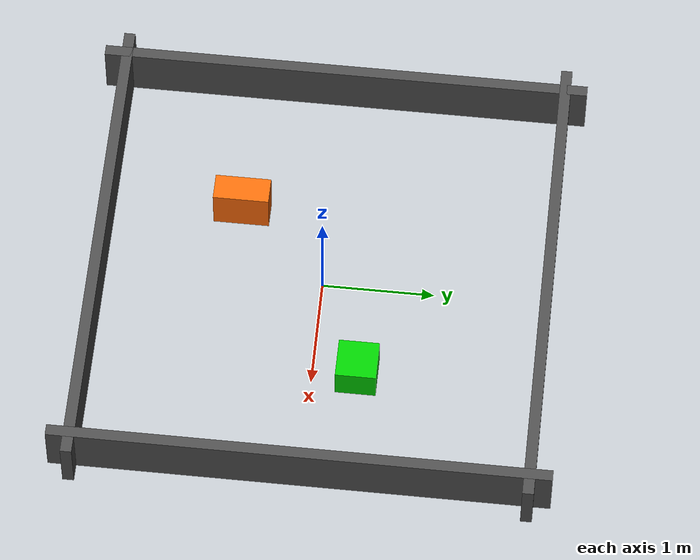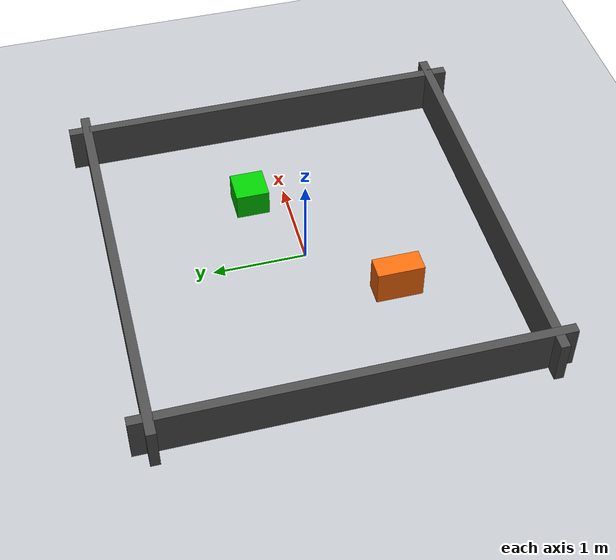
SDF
<?xml version="1.0" ?>
<sdf version="1.9">
  <world name="mecanumbot_arena">

    <physics name="1ms" type="ignored">
      <max_step_size>0.002</max_step_size>
      <real_time_factor>1.0</real_time_factor>
    </physics>

    <plugin filename="ignition-gazebo-physics-system"
            name="ignition::gazebo::systems::Physics"/>
    <plugin filename="ignition-gazebo-user-commands-system"
            name="ignition::gazebo::systems::UserCommands"/>
    <plugin filename="ignition-gazebo-scene-broadcaster-system"
            name="ignition::gazebo::systems::SceneBroadcaster"/>
    <plugin filename="ignition-gazebo-sensors-system"
            name="ignition::gazebo::systems::Sensors">
      <render_engine>ogre2</render_engine>
    </plugin>
    <plugin filename="ignition-gazebo-imu-system"
            name="ignition::gazebo::systems::Imu"/>

    <gravity>0 0 -9.81</gravity>

    <scene>
      <ambient>0.35 0.35 0.35 1</ambient>
      <background>0.7 0.75 0.8 1</background>
      <shadows>true</shadows>
    </scene>

    <light type="directional" name="sun">
      <pose>0 0 4 0 0 0</pose>
      <direction>0 0 -1</direction>
      <diffuse>0.95 0.95 0.95 1</diffuse>
      <specular>0.25 0.25 0.25 1</specular>
      <cast_shadows>true</cast_shadows>
    </light>

    <model name="ground_plane">
      <static>true</static>
      <link name="link">
        <collision name="collision">
          <geometry>
            <plane><normal>0 0 1</normal><size>10 10</size></plane>
          </geometry>
          <surface>
            <friction><ode><mu>1.0</mu><mu2>1.0</mu2></ode></friction>
          </surface>
        </collision>
        <visual name="visual">
          <geometry>
            <plane><normal>0 0 1</normal><size>10 10</size></plane>
          </geometry>
          <material>
            <ambient>0.75 0.77 0.79 1</ambient>
            <diffuse>0.75 0.77 0.79 1</diffuse>
          </material>
        </visual>
      </link>
    </model>

    <!-- Arena walls. Sizes are the MuJoCo half-extents doubled. -->
    <model name="wall_north">
      <static>true</static>
      <pose>0 2.0 0.25 0 0 0</pose>
      <link name="link">
        <collision name="collision">
          <geometry><box><size>4.4 0.1 0.5</size></box></geometry>
        </collision>
        <visual name="visual">
          <geometry><box><size>4.4 0.1 0.5</size></box></geometry>
          <material><ambient>0.3 0.3 0.3 1</ambient><diffuse>0.3 0.3 0.3 1</diffuse></material>
        </visual>
      </link>
    </model>

    <model name="wall_south">
      <static>true</static>
      <pose>0 -2.0 0.25 0 0 0</pose>
      <link name="link">
        <collision name="collision">
          <geometry><box><size>4.4 0.1 0.5</size></box></geometry>
        </collision>
        <visual name="visual">
          <geometry><box><size>4.4 0.1 0.5</size></box></geometry>
          <material><ambient>0.3 0.3 0.3 1</ambient><diffuse>0.3 0.3 0.3 1</diffuse></material>
        </visual>
      </link>
    </model>

    <model name="wall_east">
      <static>true</static>
      <pose>2.0 0 0.25 0 0 0</pose>
      <link name="link">
        <collision name="collision">
          <geometry><box><size>0.1 4.4 0.5</size></box></geometry>
        </collision>
        <visual name="visual">
          <geometry><box><size>0.1 4.4 0.5</size></box></geometry>
          <material><ambient>0.3 0.3 0.3 1</ambient><diffuse>0.3 0.3 0.3 1</diffuse></material>
        </visual>
      </link>
    </model>

    <model name="wall_west">
      <static>true</static>
      <pose>-2.0 0 0.25 0 0 0</pose>
      <link name="link">
        <collision name="collision">
          <geometry><box><size>0.1 4.4 0.5</size></box></geometry>
        </collision>
        <visual name="visual">
          <geometry><box><size>0.1 4.4 0.5</size></box></geometry>
          <material><ambient>0.3 0.3 0.3 1</ambient><diffuse>0.3 0.3 0.3 1</diffuse></material>
        </visual>
      </link>
    </model>

    <model name="box_obstacle_a">
      <static>true</static>
      <pose>0.9 0.4 0.15 0 0 0</pose>
      <link name="link">
        <collision name="collision">
          <geometry><box><size>0.36 0.36 0.3</size></box></geometry>
        </collision>
        <visual name="visual">
          <geometry><box><size>0.36 0.36 0.3</size></box></geometry>
          <material><ambient>0 0.8 0 1</ambient><diffuse>0 0.8 0 1</diffuse></material>
        </visual>
      </link>
    </model>

    <model name="box_obstacle_b">
      <static>true</static>
      <pose>-0.7 -0.8 0.2 0 0 0</pose>
      <link name="link">
        <collision name="collision">
          <geometry><box><size>0.24 0.5 0.4</size></box></geometry>
        </collision>
        <visual name="visual">
          <geometry><box><size>0.24 0.5 0.4</size></box></geometry>
          <material><ambient>1.0 0.42 0.04 1</ambient><diffuse>1.0 0.42 0.04 1</diffuse></material>
        </visual>
      </link>
    </model>

  </world>
</sdf>
